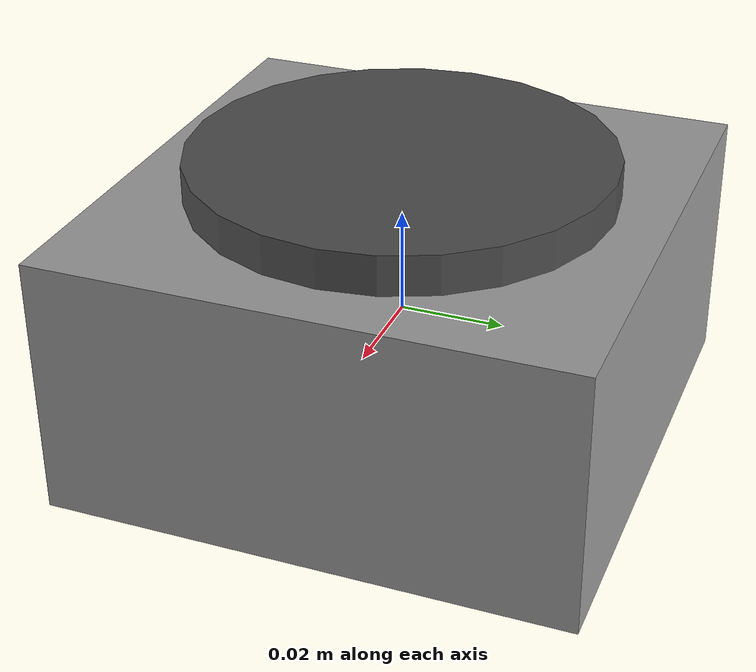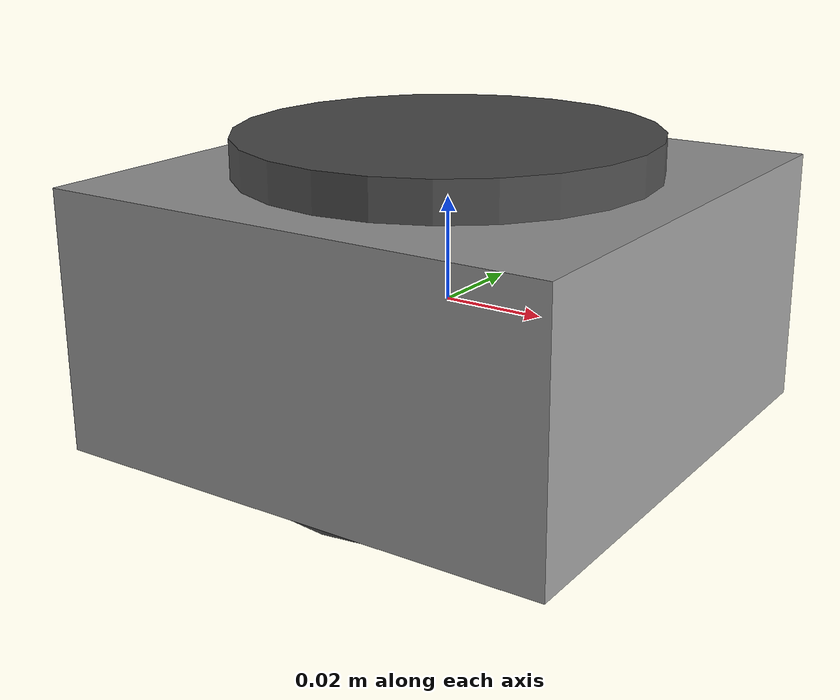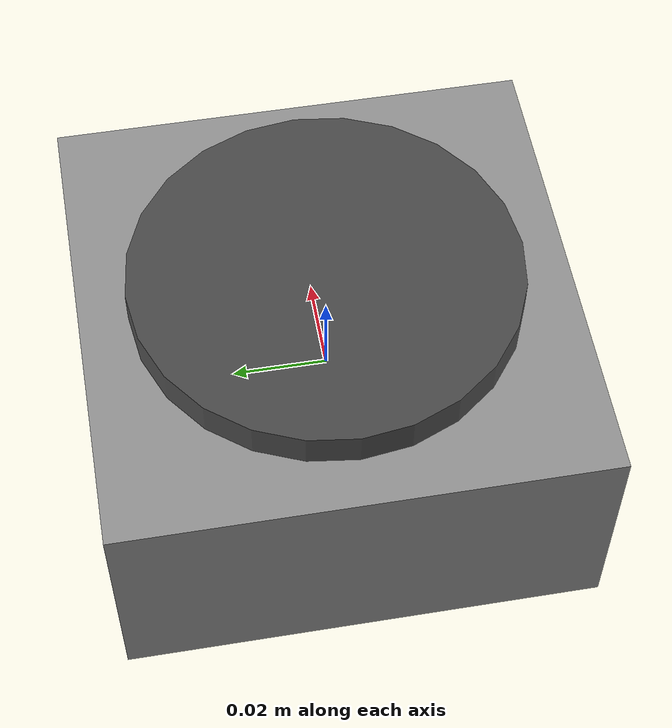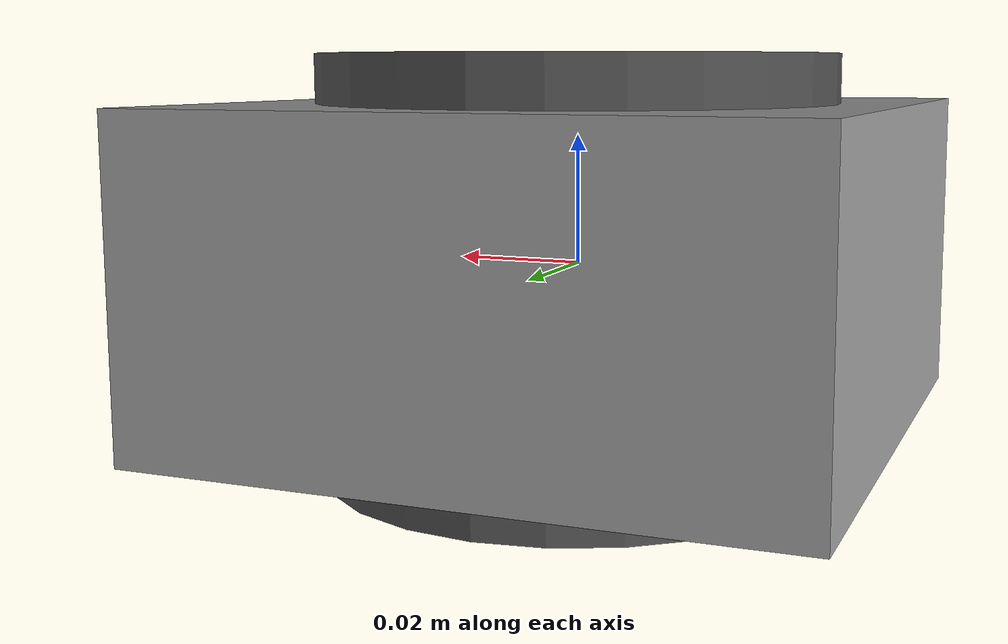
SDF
<?xml version="1.0"?>
<sdf version="1.8">
  <model name="livox_mid360">
    <link name="livox_frame">
      <visual name="visual">
        <geometry><cylinder><radius>0.04</radius><length>0.065</length></cylinder></geometry>
        <material><ambient>0.2 0.2 0.2 1.0</ambient><diffuse>0.3 0.3 0.3 1.0</diffuse></material>
      </visual>
      <sensor name="livox_lidar" type="gpu_lidar">
        <pose>0 0 0 0 0 0</pose>
        <update_rate>10</update_rate>
        <topic>livox/points</topic>
        <ray>
          <scan>
            <horizontal><samples>360</samples><resolution>1</resolution><min_angle>-3.14159</min_angle><max_angle>3.14159</max_angle></horizontal>
            <vertical><samples>1</samples><resolution>1</resolution><min_angle>0</min_angle><max_angle>0</max_angle></vertical>
          </scan>
          <range><min>0.1</min><max>40.0</max><resolution>0.02</resolution></range>
        </ray>
        <always_on>1</always_on>
        <visualize>true</visualize>
      </sensor>
    </link>
    <link name="base_link">
      <visual name="visual">
        <geometry><box><size>0.1 0.1 0.05</size></box></geometry>
        <material><ambient>0.5 0.5 0.5 1.0</ambient><diffuse>0.6 0.6 0.6 1.0</diffuse></material>
      </visual>
    </link>
    <joint name="mount_joint" type="fixed">
      <parent>base_link</parent>
      <child>livox_frame</child>
      <pose>0 0 0.05 0 0 0</pose>
    </joint>
  </model>
</sdf>
